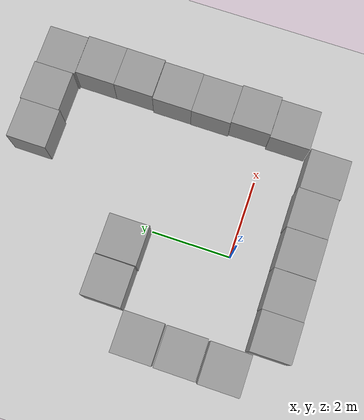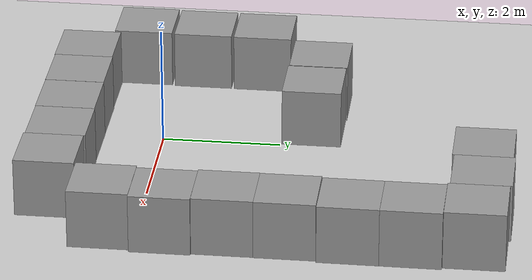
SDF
<sdf version="1.6">
 <world name="default">
  <scene><shadows>0</shadows><ambient>0.4 0.4 0.4 1</ambient><background>0.7 0.7 0.7 1</background></scene>
  <light name="sun" type="directional">
   <pose>0 0 10 0 -0 0</pose>
   <diffuse>0.8 0.8 0.8 1</diffuse>
   <specular>0.2 0.2 0.2 1</specular>
   <attenuation>
    <range>1000</range>
    <constant>0.9</constant>
    <linear>0.01</linear>
    <quadratic>0.001</quadratic>
   </attenuation>
   <direction>-0.5 0.1 -0.9</direction>
  </light>
  <model name="ground_plane">
   <static>1</static>
   <link name="link">
    <collision name="collision">
     <geometry><plane><normal>0 0 1</normal><size>100 100</size></plane></geometry>
     <surface>
      <contact><collide_bitmask>65535</collide_bitmask></contact>
      <friction><ode><mu>100</mu><mu2>50</mu2></ode></friction>
     </surface>
    </collision>
    <visual name="visual">
     <cast_shadows>0</cast_shadows>
     <geometry><plane><normal>0 0 1</normal><size>100 100</size></plane></geometry>
     <material>
      <script><uri>file://media/materials/scripts/gazebo.material</uri><name>Gazebo/Grey</name></script>
     </material>
    </visual>
   </link>
  </model>
  <gravity>0 0 -9.8</gravity>
  <magnetic_field>6e-06 2.3e-05 -4.2e-05</magnetic_field>
  <atmosphere type="adiabatic"/>
  <physics name="default_physics" default="0" type="ode">
   <max_step_size>0.001</max_step_size>
   <real_time_factor>1</real_time_factor>
   <real_time_update_rate>1000</real_time_update_rate>
  </physics>
  <audio><device>default</device></audio>
  <spherical_coordinates>
   <surface_model>EARTH_WGS84</surface_model>
   <latitude_deg>0</latitude_deg>
   <longitude_deg>0</longitude_deg>
   <elevation>0</elevation>
   <heading_deg>0</heading_deg>
  </spherical_coordinates>
  <model name="unit_box">
   <pose>-0.534803 2.52838 0.499995 -1e-05 -0 -0</pose>
   <link name="link">
    <inertial>
     <mass>1</mass>
     <inertia>
      <ixx>0.166667</ixx>
      <ixy>0</ixy>
      <ixz>0</ixz>
      <iyy>0.166667</iyy>
      <iyz>0</iyz>
      <izz>0.166667</izz>
     </inertia>
    </inertial>
    <collision name="collision"><geometry><box><size>1 1 1</size></box></geometry></collision>
    <visual name="visual">
     <geometry><box><size>1 1 1</size></box></geometry>
     <material>
      <script><name>Gazebo/Grey</name><uri>file://media/materials/scripts/gazebo.material</uri></script>
     </material>
    </visual>
   </link>
  </model>
  <model name="unit_box_0">
   <pose>1.45629 5.5247 0.499995 -1e-05 -0 -0.001247</pose>
   <link name="link">
    <inertial>
     <mass>1</mass>
     <inertia>
      <ixx>0.166667</ixx>
      <ixy>0</ixy>
      <ixz>0</ixz>
      <iyy>0.166667</iyy>
      <iyz>0</iyz>
      <izz>0.166667</izz>
     </inertia>
    </inertial>
    <collision name="collision"><geometry><box><size>1 1 1</size></box></geometry></collision>
    <visual name="visual">
     <geometry><box><size>1 1 1</size></box></geometry>
     <material>
      <script><name>Gazebo/Grey</name><uri>file://media/materials/scripts/gazebo.material</uri></script>
     </material>
    </visual>
   </link>
  </model>
  <model name="unit_box_1">
   <pose>-1.55028 2.54667 0.499995 0 1e-05 0</pose>
   <link name="link">
    <inertial>
     <mass>1</mass>
     <inertia>
      <ixx>0.166667</ixx>
      <ixy>0</ixy>
      <ixz>0</ixz>
      <iyy>0.166667</iyy>
      <iyz>0</iyz>
      <izz>0.166667</izz>
     </inertia>
    </inertial>
    <collision name="collision"><geometry><box><size>1 1 1</size></box></geometry></collision>
    <visual name="visual">
     <geometry><box><size>1 1 1</size></box></geometry>
     <material>
      <script><name>Gazebo/Grey</name><uri>file://media/materials/scripts/gazebo.material</uri></script>
     </material>
    </visual>
   </link>
  </model>
  <model name="unit_box_2">
   <pose>-2.55728 1.46454 0.499995 -1e-05 -0 -0</pose>
   <link name="link">
    <inertial>
     <mass>1</mass>
     <inertia>
      <ixx>0.166667</ixx>
      <ixy>0</ixy>
      <ixz>0</ixz>
      <iyy>0.166667</iyy>
      <iyz>0</iyz>
      <izz>0.166667</izz>
     </inertia>
    </inertial>
    <collision name="collision"><geometry><box><size>1 1 1</size></box></geometry></collision>
    <visual name="visual">
     <geometry><box><size>1 1 1</size></box></geometry>
     <material>
      <script><name>Gazebo/Grey</name><uri>file://media/materials/scripts/gazebo.material</uri></script>
     </material>
    </visual>
   </link>
  </model>
  <model name="unit_box_3">
   <pose>-2.56485 0.419029 0.499995 0 1e-05 0</pose>
   <link name="link">
    <inertial>
     <mass>1</mass>
     <inertia>
      <ixx>0.166667</ixx>
      <ixy>0</ixy>
      <ixz>0</ixz>
      <iyy>0.166667</iyy>
      <iyz>0</iyz>
      <izz>0.166667</izz>
     </inertia>
    </inertial>
    <collision name="collision"><geometry><box><size>1 1 1</size></box></geometry></collision>
    <visual name="visual">
     <geometry><box><size>1 1 1</size></box></geometry>
     <material>
      <script><name>Gazebo/Grey</name><uri>file://media/materials/scripts/gazebo.material</uri></script>
     </material>
    </visual>
   </link>
  </model>
  <model name="unit_box_4">
   <pose>-2.58749 -0.630073 0.499995 -1e-05 -0 -0</pose>
   <link name="link">
    <inertial>
     <mass>1</mass>
     <inertia>
      <ixx>0.166667</ixx>
      <ixy>0</ixy>
      <ixz>0</ixz>
      <iyy>0.166667</iyy>
      <iyz>0</iyz>
      <izz>0.166667</izz>
     </inertia>
    </inertial>
    <collision name="collision"><geometry><box><size>1 1 1</size></box></geometry></collision>
    <visual name="visual">
     <geometry><box><size>1 1 1</size></box></geometry>
     <material>
      <script><name>Gazebo/Grey</name><uri>file://media/materials/scripts/gazebo.material</uri></script>
     </material>
    </visual>
   </link>
  </model>
  <model name="unit_box_5">
   <pose>-1.53712 -1.51928 0.499995 0 1e-05 0.000386</pose>
   <link name="link">
    <inertial>
     <mass>1</mass>
     <inertia>
      <ixx>0.166667</ixx>
      <ixy>0</ixy>
      <ixz>0</ixz>
      <iyy>0.166667</iyy>
      <iyz>0</iyz>
      <izz>0.166667</izz>
     </inertia>
    </inertial>
    <collision name="collision"><geometry><box><size>1 1 1</size></box></geometry></collision>
    <visual name="visual">
     <geometry><box><size>1 1 1</size></box></geometry>
     <material>
      <script><name>Gazebo/Grey</name><uri>file://media/materials/scripts/gazebo.material</uri></script>
     </material>
    </visual>
   </link>
  </model>
  <model name="unit_box_6">
   <pose>-0.537133 -1.51006 0.499995 0 -1e-05 0.000386</pose>
   <link name="link">
    <inertial>
     <mass>1</mass>
     <inertia>
      <ixx>0.166667</ixx>
      <ixy>0</ixy>
      <ixz>0</ixz>
      <iyy>0.166667</iyy>
      <iyz>0</iyz>
      <izz>0.166667</izz>
     </inertia>
    </inertial>
    <collision name="collision"><geometry><box><size>1 1 1</size></box></geometry></collision>
    <visual name="visual">
     <geometry><box><size>1 1 1</size></box></geometry>
     <material>
      <script><name>Gazebo/Grey</name><uri>file://media/materials/scripts/gazebo.material</uri></script>
     </material>
    </visual>
   </link>
  </model>
  <model name="unit_box_7">
   <pose>0.464658 -1.5069 0.499995 1e-05 -0 -0.000544</pose>
   <link name="link">
    <inertial>
     <mass>1</mass>
     <inertia>
      <ixx>0.166667</ixx>
      <ixy>0</ixy>
      <ixz>0</ixz>
      <iyy>0.166667</iyy>
      <iyz>0</iyz>
      <izz>0.166667</izz>
     </inertia>
    </inertial>
    <collision name="collision"><geometry><box><size>1 1 1</size></box></geometry></collision>
    <visual name="visual">
     <geometry><box><size>1 1 1</size></box></geometry>
     <material>
      <script><name>Gazebo/Grey</name><uri>file://media/materials/scripts/gazebo.material</uri></script>
     </material>
    </visual>
   </link>
  </model>
  <model name="unit_box_8">
   <pose>1.46478 -1.5001 0.499995 0 -1e-05 -0.00076</pose>
   <link name="link">
    <inertial>
     <mass>1</mass>
     <inertia>
      <ixx>0.166667</ixx>
      <ixy>0</ixy>
      <ixz>0</ixz>
      <iyy>0.166667</iyy>
      <iyz>0</iyz>
      <izz>0.166667</izz>
     </inertia>
    </inertial>
    <collision name="collision"><geometry><box><size>1 1 1</size></box></geometry></collision>
    <visual name="visual">
     <geometry><box><size>1 1 1</size></box></geometry>
     <material>
      <script><name>Gazebo/Grey</name><uri>file://media/materials/scripts/gazebo.material</uri></script>
     </material>
    </visual>
   </link>
  </model>
  <model name="unit_box_9">
   <pose>2.46479 -1.52674 0.499995 0 -1e-05 -0.000718</pose>
   <link name="link">
    <inertial>
     <mass>1</mass>
     <inertia>
      <ixx>0.166667</ixx>
      <ixy>0</ixy>
      <ixz>0</ixz>
      <iyy>0.166667</iyy>
      <iyz>0</iyz>
      <izz>0.166667</izz>
     </inertia>
    </inertial>
    <collision name="collision"><geometry><box><size>1 1 1</size></box></geometry></collision>
    <visual name="visual">
     <geometry><box><size>1 1 1</size></box></geometry>
     <material>
      <script><name>Gazebo/Grey</name><uri>file://media/materials/scripts/gazebo.material</uri></script>
     </material>
    </visual>
   </link>
  </model>
  <model name="unit_box_10">
   <pose>3.42744 -0.499799 0.499995 -1e-05 -0 -0</pose>
   <link name="link">
    <inertial>
     <mass>1</mass>
     <inertia>
      <ixx>0.166667</ixx>
      <ixy>0</ixy>
      <ixz>0</ixz>
      <iyy>0.166667</iyy>
      <iyz>0</iyz>
      <izz>0.166667</izz>
     </inertia>
    </inertial>
    <collision name="collision"><geometry><box><size>1 1 1</size></box></geometry></collision>
    <visual name="visual">
     <geometry><box><size>1 1 1</size></box></geometry>
     <material>
      <script><name>Gazebo/Grey</name><uri>file://media/materials/scripts/gazebo.material</uri></script>
     </material>
    </visual>
   </link>
  </model>
  <model name="unit_box_11">
   <pose>3.48694 0.501613 0.499995 1e-05 -0 0.000216</pose>
   <link name="link">
    <inertial>
     <mass>1</mass>
     <inertia>
      <ixx>0.166667</ixx>
      <ixy>0</ixy>
      <ixz>0</ixz>
      <iyy>0.166667</iyy>
      <iyz>0</iyz>
      <izz>0.166667</izz>
     </inertia>
    </inertial>
    <collision name="collision"><geometry><box><size>1 1 1</size></box></geometry></collision>
    <visual name="visual">
     <geometry><box><size>1 1 1</size></box></geometry>
     <material>
      <script><name>Gazebo/Grey</name><uri>file://media/materials/scripts/gazebo.material</uri></script>
     </material>
    </visual>
   </link>
  </model>
  <model name="unit_box_12">
   <pose>3.45027 1.50178 0.499995 -0 -1e-05 0.000517</pose>
   <link name="link">
    <inertial>
     <mass>1</mass>
     <inertia>
      <ixx>0.166667</ixx>
      <ixy>0</ixy>
      <ixz>0</ixz>
      <iyy>0.166667</iyy>
      <iyz>0</iyz>
      <izz>0.166667</izz>
     </inertia>
    </inertial>
    <collision name="collision"><geometry><box><size>1 1 1</size></box></geometry></collision>
    <visual name="visual">
     <geometry><box><size>1 1 1</size></box></geometry>
     <material>
      <script><name>Gazebo/Grey</name><uri>file://media/materials/scripts/gazebo.material</uri></script>
     </material>
    </visual>
   </link>
  </model>
  <model name="unit_box_13">
   <pose>3.45724 2.50183 0.499995 0 -1e-05 0.000482</pose>
   <link name="link">
    <inertial>
     <mass>1</mass>
     <inertia>
      <ixx>0.166667</ixx>
      <ixy>0</ixy>
      <ixz>0</ixz>
      <iyy>0.166667</iyy>
      <iyz>0</iyz>
      <izz>0.166667</izz>
     </inertia>
    </inertial>
    <collision name="collision"><geometry><box><size>1 1 1</size></box></geometry></collision>
    <visual name="visual">
     <geometry><box><size>1 1 1</size></box></geometry>
     <material>
      <script><name>Gazebo/Grey</name><uri>file://media/materials/scripts/gazebo.material</uri></script>
     </material>
    </visual>
   </link>
  </model>
  <model name="unit_box_14">
   <pose>3.49896 3.51239 0.499995 0 -1e-05 -0.005308</pose>
   <link name="link">
    <inertial>
     <mass>1</mass>
     <inertia>
      <ixx>0.166667</ixx>
      <ixy>0</ixy>
      <ixz>0</ixz>
      <iyy>0.166667</iyy>
      <iyz>0</iyz>
      <izz>0.166667</izz>
     </inertia>
    </inertial>
    <collision name="collision"><geometry><box><size>1 1 1</size></box></geometry></collision>
    <visual name="visual">
     <geometry><box><size>1 1 1</size></box></geometry>
     <material>
      <script><name>Gazebo/Grey</name><uri>file://media/materials/scripts/gazebo.material</uri></script>
     </material>
    </visual>
   </link>
  </model>
  <model name="unit_box_15">
   <pose>3.50355 4.51243 0.499961 0 0 -0.005303</pose>
   <link name="link">
    <inertial>
     <mass>1</mass>
     <inertia>
      <ixx>0.166667</ixx>
      <ixy>0</ixy>
      <ixz>0</ixz>
      <iyy>0.166667</iyy>
      <iyz>0</iyz>
      <izz>0.166667</izz>
     </inertia>
    </inertial>
    <collision name="collision"><geometry><box><size>1 1 1</size></box></geometry></collision>
    <visual name="visual">
     <geometry><box><size>1 1 1</size></box></geometry>
     <material>
      <script><name>Gazebo/Grey</name><uri>file://media/materials/scripts/gazebo.material</uri></script>
     </material>
    </visual>
   </link>
  </model>
  <model name="unit_box_16">
   <pose>2.45636 5.55431 0.5 -0 -0 -0.001304</pose>
   <link name="link">
    <inertial>
     <mass>1</mass>
     <inertia>
      <ixx>0.166667</ixx>
      <ixy>0</ixy>
      <ixz>0</ixz>
      <iyy>0.166667</iyy>
      <iyz>0</iyz>
      <izz>0.166667</izz>
     </inertia>
    </inertial>
    <collision name="collision"><geometry><box><size>1 1 1</size></box></geometry></collision>
    <visual name="visual">
     <geometry><box><size>1 1 1</size></box></geometry>
     <material>
      <script><name>Gazebo/Grey</name><uri>file://media/materials/scripts/gazebo.material</uri></script>
     </material>
    </visual>
   </link>
  </model>
  <model name="unit_box_17">
   <pose>3.45639 5.51442 0.499995 1e-05 0 -0.001474</pose>
   <link name="link">
    <inertial>
     <mass>1</mass>
     <inertia>
      <ixx>0.166667</ixx>
      <ixy>0</ixy>
      <ixz>0</ixz>
      <iyy>0.166667</iyy>
      <iyz>0</iyz>
      <izz>0.166667</izz>
     </inertia>
    </inertial>
    <collision name="collision"><geometry><box><size>1 1 1</size></box></geometry></collision>
    <visual name="visual">
     <geometry><box><size>1 1 1</size></box></geometry>
     <material>
      <script><name>Gazebo/Grey</name><uri>file://media/materials/scripts/gazebo.material</uri></script>
     </material>
    </visual>
   </link>
  </model>
 </world>
</sdf>
